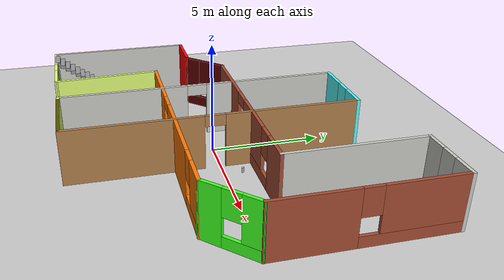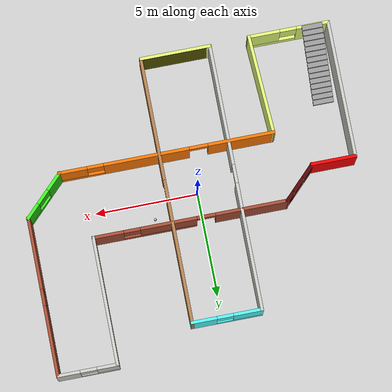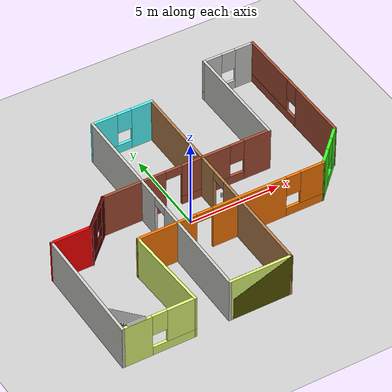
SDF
<sdf version="1.6">
 <world name="default">
  <light name="sun" type="directional">
   <pose>0 0 10 0 -0 0</pose>
   <diffuse>0.8 0.8 0.8 1</diffuse>
   <specular>0.2 0.2 0.2 1</specular>
   <attenuation>
    <range>1000</range>
    <constant>0.9</constant>
    <linear>0.01</linear>
    <quadratic>0.001</quadratic>
   </attenuation>
   <direction>-0.5 0.1 -0.9</direction>
  </light>
  <model name="ground_plane">
   <static>1</static>
   <link name="link">
    <collision name="collision">
     <geometry><plane><normal>0 0 1</normal><size>100 100</size></plane></geometry>
     <surface><friction><ode><mu>100</mu><mu2>50</mu2></ode></friction></surface>
    </collision>
    <visual name="visual">
     <cast_shadows>0</cast_shadows>
     <geometry><plane><normal>0 0 1</normal><size>100 100</size></plane></geometry>
     <material>
      <script><uri>file://media/materials/scripts/gazebo.material</uri><name>Gazebo/Grey</name></script>
     </material>
    </visual>
   </link>
  </model>
  <gravity>0 0 -9.8</gravity>
  <magnetic_field>6e-06 2.3e-05 -4.2e-05</magnetic_field>
  <atmosphere type="adiabatic"/>
  <physics name="default_physics" default="0" type="ode">
   <max_step_size>0.001</max_step_size>
   <real_time_factor>1</real_time_factor>
   <real_time_update_rate>1000</real_time_update_rate>
  </physics>
  <scene><ambient>0.4 0.4 0.4 1</ambient><background>0.7 0.7 0.7 1</background><shadows>1</shadows></scene>
  <spherical_coordinates>
   <surface_model>EARTH_WGS84</surface_model>
   <latitude_deg>0</latitude_deg>
   <longitude_deg>0</longitude_deg>
   <elevation>0</elevation>
   <heading_deg>0</heading_deg>
  </spherical_coordinates>
  <model name="swastika">
   <pose>0.275057 0.413118 0 0 -0 0</pose>
   <link name="Stairs_0">
    <visual name="Stairs_0_Visual_0">
     <pose>-7.12565 -3.74754 0.083333 0 -0 0</pose>
     <geometry><box><size>1 0.233333 0.166667</size></box></geometry>
     <material>
      <script><uri>file://media/materials/scripts/gazebo.material</uri><name>Gazebo/Grey</name></script>
      <ambient>1 1 1 1</ambient>
     </material>
     <meta><layer>0</layer></meta>
    </visual>
    <collision name="Stairs_0_Collision_0">
     <geometry><box><size>1 0.233333 0.166667</size></box></geometry>
     <pose>-7.12565 -3.74754 0.083333 0 -0 0</pose>
    </collision>
    <visual name="Stairs_0_Visual_1">
     <pose>-7.12565 -3.98088 0.25 0 -0 0</pose>
     <geometry><box><size>1 0.233333 0.166667</size></box></geometry>
     <material>
      <script><uri>file://media/materials/scripts/gazebo.material</uri><name>Gazebo/Grey</name></script>
      <ambient>1 1 1 1</ambient>
     </material>
     <meta><layer>0</layer></meta>
    </visual>
    <collision name="Stairs_0_Collision_1">
     <geometry><box><size>1 0.233333 0.166667</size></box></geometry>
     <pose>-7.12565 -3.98088 0.25 0 -0 0</pose>
    </collision>
    <visual name="Stairs_0_Visual_2">
     <pose>-7.12565 -4.21421 0.416667 0 -0 0</pose>
     <geometry><box><size>1 0.233333 0.166667</size></box></geometry>
     <material>
      <script><uri>file://media/materials/scripts/gazebo.material</uri><name>Gazebo/Grey</name></script>
      <ambient>1 1 1 1</ambient>
     </material>
     <meta><layer>0</layer></meta>
    </visual>
    <collision name="Stairs_0_Collision_2">
     <geometry><box><size>1 0.233333 0.166667</size></box></geometry>
     <pose>-7.12565 -4.21421 0.416667 0 -0 0</pose>
    </collision>
    <visual name="Stairs_0_Visual_3">
     <pose>-7.12565 -4.44754 0.583333 0 -0 0</pose>
     <geometry><box><size>1 0.233333 0.166667</size></box></geometry>
     <material>
      <script><uri>file://media/materials/scripts/gazebo.material</uri><name>Gazebo/Grey</name></script>
      <ambient>1 1 1 1</ambient>
     </material>
     <meta><layer>0</layer></meta>
    </visual>
    <collision name="Stairs_0_Collision_3">
     <geometry><box><size>1 0.233333 0.166667</size></box></geometry>
     <pose>-7.12565 -4.44754 0.583333 0 -0 0</pose>
    </collision>
    <visual name="Stairs_0_Visual_4">
     <pose>-7.12565 -4.68088 0.75 0 -0 0</pose>
     <geometry><box><size>1 0.233333 0.166667</size></box></geometry>
     <material>
      <script><uri>file://media/materials/scripts/gazebo.material</uri><name>Gazebo/Grey</name></script>
      <ambient>1 1 1 1</ambient>
     </material>
     <meta><layer>0</layer></meta>
    </visual>
    <collision name="Stairs_0_Collision_4">
     <geometry><box><size>1 0.233333 0.166667</size></box></geometry>
     <pose>-7.12565 -4.68088 0.75 0 -0 0</pose>
    </collision>
    <visual name="Stairs_0_Visual_5">
     <pose>-7.12565 -4.91421 0.916667 0 -0 0</pose>
     <geometry><box><size>1 0.233333 0.166667</size></box></geometry>
     <material>
      <script><uri>file://media/materials/scripts/gazebo.material</uri><name>Gazebo/Grey</name></script>
      <ambient>1 1 1 1</ambient>
     </material>
     <meta><layer>0</layer></meta>
    </visual>
    <collision name="Stairs_0_Collision_5">
     <geometry><box><size>1 0.233333 0.166667</size></box></geometry>
     <pose>-7.12565 -4.91421 0.916667 0 -0 0</pose>
    </collision>
    <visual name="Stairs_0_Visual_6">
     <pose>-7.12565 -5.14754 1.08333 0 -0 0</pose>
     <geometry><box><size>1 0.233333 0.166667</size></box></geometry>
     <material>
      <script><uri>file://media/materials/scripts/gazebo.material</uri><name>Gazebo/Grey</name></script>
      <ambient>1 1 1 1</ambient>
     </material>
     <meta><layer>0</layer></meta>
    </visual>
    <collision name="Stairs_0_Collision_6">
     <geometry><box><size>1 0.233333 0.166667</size></box></geometry>
     <pose>-7.12565 -5.14754 1.08333 0 -0 0</pose>
    </collision>
    <visual name="Stairs_0_Visual_7">
     <pose>-7.12565 -5.38087 1.25 0 -0 0</pose>
     <geometry><box><size>1 0.233333 0.166667</size></box></geometry>
     <material>
      <script><uri>file://media/materials/scripts/gazebo.material</uri><name>Gazebo/Grey</name></script>
      <ambient>1 1 1 1</ambient>
     </material>
     <meta><layer>0</layer></meta>
    </visual>
    <collision name="Stairs_0_Collision_7">
     <geometry><box><size>1 0.233333 0.166667</size></box></geometry>
     <pose>-7.12565 -5.38087 1.25 0 -0 0</pose>
    </collision>
    <visual name="Stairs_0_Visual_8">
     <pose>-7.12565 -5.61421 1.41667 0 -0 0</pose>
     <geometry><box><size>1 0.233333 0.166667</size></box></geometry>
     <material>
      <script><uri>file://media/materials/scripts/gazebo.material</uri><name>Gazebo/Grey</name></script>
      <ambient>1 1 1 1</ambient>
     </material>
     <meta><layer>0</layer></meta>
    </visual>
    <collision name="Stairs_0_Collision_8">
     <geometry><box><size>1 0.233333 0.166667</size></box></geometry>
     <pose>-7.12565 -5.61421 1.41667 0 -0 0</pose>
    </collision>
    <visual name="Stairs_0_Visual_9">
     <pose>-7.12565 -5.84754 1.58333 0 -0 0</pose>
     <geometry><box><size>1 0.233333 0.166667</size></box></geometry>
     <material>
      <script><uri>file://media/materials/scripts/gazebo.material</uri><name>Gazebo/Grey</name></script>
      <ambient>1 1 1 1</ambient>
     </material>
     <meta><layer>0</layer></meta>
    </visual>
    <collision name="Stairs_0_Collision_9">
     <geometry><box><size>1 0.233333 0.166667</size></box></geometry>
     <pose>-7.12565 -5.84754 1.58333 0 -0 0</pose>
    </collision>
    <visual name="Stairs_0_Visual_10">
     <pose>-7.12565 -6.08087 1.75 0 -0 0</pose>
     <geometry><box><size>1 0.233333 0.166667</size></box></geometry>
     <material>
      <script><uri>file://media/materials/scripts/gazebo.material</uri><name>Gazebo/Grey</name></script>
      <ambient>1 1 1 1</ambient>
     </material>
     <meta><layer>0</layer></meta>
    </visual>
    <collision name="Stairs_0_Collision_10">
     <geometry><box><size>1 0.233333 0.166667</size></box></geometry>
     <pose>-7.12565 -6.08087 1.75 0 -0 0</pose>
    </collision>
    <visual name="Stairs_0_Visual_11">
     <pose>-7.12565 -6.31421 1.91667 0 -0 0</pose>
     <geometry><box><size>1 0.233333 0.166667</size></box></geometry>
     <material>
      <script><uri>file://media/materials/scripts/gazebo.material</uri><name>Gazebo/Grey</name></script>
      <ambient>1 1 1 1</ambient>
     </material>
     <meta><layer>0</layer></meta>
    </visual>
    <collision name="Stairs_0_Collision_11">
     <geometry><box><size>1 0.233333 0.166667</size></box></geometry>
     <pose>-7.12565 -6.31421 1.91667 0 -0 0</pose>
    </collision>
    <visual name="Stairs_0_Visual_12">
     <pose>-7.12565 -6.54754 2.08333 0 -0 0</pose>
     <geometry><box><size>1 0.233333 0.166667</size></box></geometry>
     <material>
      <script><uri>file://media/materials/scripts/gazebo.material</uri><name>Gazebo/Grey</name></script>
      <ambient>1 1 1 1</ambient>
     </material>
     <meta><layer>0</layer></meta>
    </visual>
    <collision name="Stairs_0_Collision_12">
     <geometry><box><size>1 0.233333 0.166667</size></box></geometry>
     <pose>-7.12565 -6.54754 2.08333 0 -0 0</pose>
    </collision>
    <visual name="Stairs_0_Visual_13">
     <pose>-7.12565 -6.78087 2.25 0 -0 0</pose>
     <geometry><box><size>1 0.233333 0.166667</size></box></geometry>
     <material>
      <script><uri>file://media/materials/scripts/gazebo.material</uri><name>Gazebo/Grey</name></script>
      <ambient>1 1 1 1</ambient>
     </material>
     <meta><layer>0</layer></meta>
    </visual>
    <collision name="Stairs_0_Collision_13">
     <geometry><box><size>1 0.233333 0.166667</size></box></geometry>
     <pose>-7.12565 -6.78087 2.25 0 -0 0</pose>
    </collision>
    <visual name="Stairs_0_Visual_14">
     <pose>-7.12565 -7.01421 2.41667 0 -0 0</pose>
     <geometry><box><size>1 0.233333 0.166667</size></box></geometry>
     <material>
      <script><uri>file://media/materials/scripts/gazebo.material</uri><name>Gazebo/Grey</name></script>
      <ambient>1 1 1 1</ambient>
     </material>
     <meta><layer>0</layer></meta>
    </visual>
    <collision name="Stairs_0_Collision_14">
     <geometry><box><size>1 0.233333 0.166667</size></box></geometry>
     <pose>-7.12565 -7.01421 2.41667 0 -0 0</pose>
    </collision>
   </link>
   <link name="Wall_0">
    <pose>0.863451 -2.34407 0 0 -0 0</pose>
    <visual name="Wall_0_Visual_0">
     <pose>-3.6251 0 1.25 0 -0 0</pose>
     <geometry><box><size>3.2498 0.15 2.5</size></box></geometry>
     <material>
      <script><uri>file://media/materials/scripts/gazebo.material</uri><name>Gazebo/Grey</name></script>
      <ambient>0.996078 0.47451 0.0196078 1</ambient>
     </material>
     <meta><layer>0</layer></meta>
    </visual>
    <collision name="Wall_0_Collision_0">
     <geometry><box><size>3.2498 0.15 2.5</size></box></geometry>
     <pose>-3.6251 0 1.25 0 -0 0</pose>
    </collision>
    <visual name="Wall_0_Visual_1">
     <pose>0.9729 0 1.25 0 -0 0</pose>
     <geometry><box><size>4.14619 0.15 2.5</size></box></geometry>
     <material>
      <script><uri>file://media/materials/scripts/gazebo.material</uri><name>Gazebo/Grey</name></script>
      <ambient>0.996078 0.47451 0.0196078 1</ambient>
     </material>
     <meta><layer>0</layer></meta>
    </visual>
    <collision name="Wall_0_Collision_1">
     <geometry><box><size>4.14619 0.15 2.5</size></box></geometry>
     <pose>0.9729 0 1.25 0 -0 0</pose>
    </collision>
    <visual name="Wall_0_Visual_2">
     <pose>4.148 0 0.25 0 -0 0</pose>
     <geometry><box><size>2.204 0.15 0.5</size></box></geometry>
     <material>
      <script><uri>file://media/materials/scripts/gazebo.material</uri><name>Gazebo/Grey</name></script>
      <ambient>0.996078 0.47451 0.0196078 1</ambient>
     </material>
     <meta><layer>0</layer></meta>
    </visual>
    <collision name="Wall_0_Collision_2">
     <geometry><box><size>2.204 0.15 0.5</size></box></geometry>
     <pose>4.148 0 0.25 0 -0 0</pose>
    </collision>
    <visual name="Wall_0_Visual_3">
     <pose>4.548 0 1.5 0 -0 0</pose>
     <geometry><box><size>1.404 0.15 2</size></box></geometry>
     <material>
      <script><uri>file://media/materials/scripts/gazebo.material</uri><name>Gazebo/Grey</name></script>
      <ambient>0.996078 0.47451 0.0196078 1</ambient>
     </material>
     <meta><layer>0</layer></meta>
    </visual>
    <collision name="Wall_0_Collision_3">
     <geometry><box><size>1.404 0.15 2</size></box></geometry>
     <pose>4.548 0 1.5 0 -0 0</pose>
    </collision>
    <visual name="Wall_0_Visual_4">
     <pose>3.446 0 1.9 0 -0 0</pose>
     <geometry><box><size>0.8 0.15 1.2</size></box></geometry>
     <material>
      <script><uri>file://media/materials/scripts/gazebo.material</uri><name>Gazebo/Grey</name></script>
      <ambient>0.996078 0.47451 0.0196078 1</ambient>
     </material>
     <meta><layer>0</layer></meta>
    </visual>
    <collision name="Wall_0_Collision_4">
     <geometry><box><size>0.8 0.15 1.2</size></box></geometry>
     <pose>3.446 0 1.9 0 -0 0</pose>
    </collision>
    <visual name="Wall_0_Visual_5">
     <pose>-1.5502 0 2.25 0 -0 0</pose>
     <geometry><box><size>0.9 0.15 0.5</size></box></geometry>
     <material>
      <script><uri>file://media/materials/scripts/gazebo.material</uri><name>Gazebo/Grey</name></script>
      <ambient>0.996078 0.47451 0.0196078 1</ambient>
     </material>
     <meta><layer>0</layer></meta>
    </visual>
    <collision name="Wall_0_Collision_5">
     <geometry><box><size>0.9 0.15 0.5</size></box></geometry>
     <pose>-1.5502 0 2.25 0 -0 0</pose>
    </collision>
   </link>
   <link name="Wall_1">
    <pose>6.95769 -1.42483 0 0 -0 0.785398</pose>
    <visual name="Wall_1_Visual_0">
     <pose>-0.850399 0 1.25 0 -0 0</pose>
     <geometry><box><size>1.0492 0.15 2.5</size></box></geometry>
     <material>
      <script><uri>file://media/materials/scripts/gazebo.material</uri><name>Gazebo/Grey</name></script>
      <ambient>0.243137 1 0.129412 1</ambient>
     </material>
     <meta><layer>0</layer></meta>
    </visual>
    <collision name="Wall_1_Collision_0">
     <geometry><box><size>1.0492 0.15 2.5</size></box></geometry>
     <pose>-0.850399 0 1.25 0 -0 0</pose>
    </collision>
    <visual name="Wall_1_Visual_1">
     <pose>0.524601 0 0.25 0 -0 0</pose>
     <geometry><box><size>1.7008 0.15 0.5</size></box></geometry>
     <material>
      <script><uri>file://media/materials/scripts/gazebo.material</uri><name>Gazebo/Grey</name></script>
      <ambient>0.243137 1 0.129412 1</ambient>
     </material>
     <meta><layer>0</layer></meta>
    </visual>
    <collision name="Wall_1_Collision_1">
     <geometry><box><size>1.7008 0.15 0.5</size></box></geometry>
     <pose>0.524601 0 0.25 0 -0 0</pose>
    </collision>
    <visual name="Wall_1_Visual_2">
     <pose>0.924601 0 1.5 0 -0 0</pose>
     <geometry><box><size>0.900797 0.15 2</size></box></geometry>
     <material>
      <script><uri>file://media/materials/scripts/gazebo.material</uri><name>Gazebo/Grey</name></script>
      <ambient>0.243137 1 0.129412 1</ambient>
     </material>
     <meta><layer>0</layer></meta>
    </visual>
    <collision name="Wall_1_Collision_2">
     <geometry><box><size>0.900797 0.15 2</size></box></geometry>
     <pose>0.924601 0 1.5 0 -0 0</pose>
    </collision>
    <visual name="Wall_1_Visual_3">
     <pose>0.074203 0 1.9 0 -0 0</pose>
     <geometry><box><size>0.8 0.15 1.2</size></box></geometry>
     <material>
      <script><uri>file://media/materials/scripts/gazebo.material</uri><name>Gazebo/Grey</name></script>
      <ambient>0.243137 1 0.129412 1</ambient>
     </material>
     <meta><layer>0</layer></meta>
    </visual>
    <collision name="Wall_1_Collision_3">
     <geometry><box><size>0.8 0.15 1.2</size></box></geometry>
     <pose>0.074203 0 1.9 0 -0 0</pose>
    </collision>
   </link>
   <link name="Wall_10">
    <collision name="Wall_10_Collision">
     <geometry><box><size>4.90321 0.15 2.5</size></box></geometry>
     <pose>0 0 1.25 0 -0 0</pose>
    </collision>
    <visual name="Wall_10_Visual">
     <pose>0 0 1.25 0 -0 0</pose>
     <geometry><box><size>4.90321 0.15 2.5</size></box></geometry>
     <material>
      <script><uri>file://media/materials/scripts/gazebo.material</uri><name>Gazebo/Grey</name></script>
      <ambient>0.886275 1 0.470588 1</ambient>
     </material>
     <meta><layer>0</layer></meta>
    </visual>
    <pose>-4.18477 -4.71729 0 0 -0 1.62417</pose>
   </link>
   <link name="Wall_13">
    <collision name="Wall_13_Collision">
     <geometry><box><size>3.25 0.15 2.5</size></box></geometry>
     <pose>0 0 1.25 0 -0 0</pose>
    </collision>
    <visual name="Wall_13_Visual">
     <pose>0 0 1.25 0 -0 0</pose>
     <geometry><box><size>3.25 0.15 2.5</size></box></geometry>
     <material>
      <script><uri>file://media/materials/scripts/gazebo.material</uri><name>Gazebo/Grey</name></script>
      <ambient>0.333333 0.333333 0 1</ambient>
     </material>
     <meta><layer>0</layer></meta>
    </visual>
    <pose>-0.339616 -7.01768 0 0 -0 0</pose>
   </link>
   <link name="Wall_14">
    <pose>1.21038 -0.592682 0 0 -0 1.5708</pose>
    <visual name="Wall_14_Visual_0">
     <pose>-3.4938 0 1.25 0 -0 0</pose>
     <geometry><box><size>6.01239 0.15 2.5</size></box></geometry>
     <material>
      <script><uri>file://media/materials/scripts/gazebo.material</uri><name>Gazebo/Wood</name></script>
      <ambient>0.921569 0.807843 0.615686 1</ambient>
     </material>
     <meta><layer>0</layer></meta>
    </visual>
    <collision name="Wall_14_Collision_0">
     <geometry><box><size>6.01239 0.15 2.5</size></box></geometry>
     <pose>-3.4938 0 1.25 0 -0 0</pose>
    </collision>
    <visual name="Wall_14_Visual_1">
     <pose>3.4562 0 1.25 0 -0 0</pose>
     <geometry><box><size>6.08761 0.15 2.5</size></box></geometry>
     <material>
      <script><uri>file://media/materials/scripts/gazebo.material</uri><name>Gazebo/Wood</name></script>
      <ambient>0.921569 0.807843 0.615686 1</ambient>
     </material>
     <meta><layer>0</layer></meta>
    </visual>
    <collision name="Wall_14_Collision_1">
     <geometry><box><size>6.08761 0.15 2.5</size></box></geometry>
     <pose>3.4562 0 1.25 0 -0 0</pose>
    </collision>
    <visual name="Wall_14_Visual_2">
     <pose>-0.037608 0 2.25 0 -0 0</pose>
     <geometry><box><size>0.9 0.15 0.5</size></box></geometry>
     <material>
      <script><uri>file://media/materials/scripts/gazebo.material</uri><name>Gazebo/Wood</name></script>
      <ambient>0.921569 0.807843 0.615686 1</ambient>
     </material>
     <meta><layer>0</layer></meta>
    </visual>
    <collision name="Wall_14_Collision_2">
     <geometry><box><size>0.9 0.15 0.5</size></box></geometry>
     <pose>-0.037608 0 2.25 0 -0 0</pose>
    </collision>
   </link>
   <link name="Wall_15">
    <pose>-0.464616 5.83232 0 0 -0 3.14159</pose>
    <visual name="Wall_15_Visual_0">
     <pose>-1.11746 0 1.25 0 -0 0</pose>
     <geometry><box><size>1.26507 0.15 2.5</size></box></geometry>
     <material>
      <script><uri>file://media/materials/scripts/gazebo.material</uri><name>Gazebo/Grey</name></script>
      <ambient>0.333333 1 1 1</ambient>
     </material>
     <meta><layer>0</layer></meta>
    </visual>
    <collision name="Wall_15_Collision_0">
     <geometry><box><size>1.26507 0.15 2.5</size></box></geometry>
     <pose>-1.11746 0 1.25 0 -0 0</pose>
    </collision>
    <visual name="Wall_15_Visual_1">
     <pose>0.632535 0 0.25 0 -0 0</pose>
     <geometry><box><size>2.23493 0.15 0.5</size></box></geometry>
     <material>
      <script><uri>file://media/materials/scripts/gazebo.material</uri><name>Gazebo/Grey</name></script>
      <ambient>0.333333 1 1 1</ambient>
     </material>
     <meta><layer>0</layer></meta>
    </visual>
    <collision name="Wall_15_Collision_1">
     <geometry><box><size>2.23493 0.15 0.5</size></box></geometry>
     <pose>0.632535 0 0.25 0 -0 0</pose>
    </collision>
    <visual name="Wall_15_Visual_2">
     <pose>1.03253 0 1.5 0 -0 0</pose>
     <geometry><box><size>1.43493 0.15 2</size></box></geometry>
     <material>
      <script><uri>file://media/materials/scripts/gazebo.material</uri><name>Gazebo/Grey</name></script>
      <ambient>0.333333 1 1 1</ambient>
     </material>
     <meta><layer>0</layer></meta>
    </visual>
    <collision name="Wall_15_Collision_2">
     <geometry><box><size>1.43493 0.15 2</size></box></geometry>
     <pose>1.03253 0 1.5 0 -0 0</pose>
    </collision>
    <visual name="Wall_15_Visual_3">
     <pose>-0.08493 0 1.9 0 -0 0</pose>
     <geometry><box><size>0.8 0.15 1.2</size></box></geometry>
     <material>
      <script><uri>file://media/materials/scripts/gazebo.material</uri><name>Gazebo/Grey</name></script>
      <ambient>0.333333 1 1 1</ambient>
     </material>
     <meta><layer>0</layer></meta>
    </visual>
    <collision name="Wall_15_Collision_3">
     <geometry><box><size>0.8 0.15 1.2</size></box></geometry>
     <pose>-0.08493 0 1.9 0 -0 0</pose>
    </collision>
   </link>
   <link name="Wall_16">
    <pose>-2.13962 -0.592682 0 0 0 -1.5708</pose>
    <visual name="Wall_16_Visual_0">
     <pose>-3.40297 0 1.25 0 -0 0</pose>
     <geometry><box><size>6.19407 0.15 2.5</size></box></geometry>
     <material>
      <script><uri>file://media/materials/scripts/gazebo.material</uri><name>Gazebo/CeilingTiled</name></script>
      <ambient>0.435294 0.796078 0.67451 1</ambient>
     </material>
     <meta><layer>0</layer></meta>
    </visual>
    <collision name="Wall_16_Collision_0">
     <geometry><box><size>6.19407 0.15 2.5</size></box></geometry>
     <pose>-3.40297 0 1.25 0 -0 0</pose>
    </collision>
    <visual name="Wall_16_Visual_1">
     <pose>3.54704 0 1.25 0 -0 0</pose>
     <geometry><box><size>5.90593 0.15 2.5</size></box></geometry>
     <material>
      <script><uri>file://media/materials/scripts/gazebo.material</uri><name>Gazebo/CeilingTiled</name></script>
      <ambient>0.435294 0.796078 0.67451 1</ambient>
     </material>
     <meta><layer>0</layer></meta>
    </visual>
    <collision name="Wall_16_Collision_1">
     <geometry><box><size>5.90593 0.15 2.5</size></box></geometry>
     <pose>3.54704 0 1.25 0 -0 0</pose>
    </collision>
    <visual name="Wall_16_Visual_2">
     <pose>0.144069 0 2.25 0 -0 0</pose>
     <geometry><box><size>0.9 0.15 0.5</size></box></geometry>
     <material>
      <script><uri>file://media/materials/scripts/gazebo.material</uri><name>Gazebo/CeilingTiled</name></script>
      <ambient>0.435294 0.796078 0.67451 1</ambient>
     </material>
     <meta><layer>0</layer></meta>
    </visual>
    <collision name="Wall_16_Collision_2">
     <geometry><box><size>0.9 0.15 0.5</size></box></geometry>
     <pose>0.144069 0 2.25 0 -0 0</pose>
    </collision>
   </link>
   <link name="Wall_17">
    <collision name="Wall_17_Collision">
     <geometry><box><size>3.5 0.15 2.5</size></box></geometry>
     <pose>0 0 1.25 0 -0 0</pose>
    </collision>
    <visual name="Wall_17_Visual">
     <pose>0 0 1.25 0 -0 0</pose>
     <geometry><box><size>3.5 0.15 2.5</size></box></geometry>
     <material>
      <script><uri>file://media/materials/scripts/gazebo.material</uri><name>Gazebo/Grey</name></script>
      <ambient>0.886275 1 0.470588 1</ambient>
     </material>
     <meta><layer>0</layer></meta>
    </visual>
    <pose>-0.464616 -7.01768 0 0 -0 0</pose>
   </link>
   <link name="Wall_2">
    <pose>7.87693 3.29441 0 0 -0 1.5708</pose>
    <visual name="Wall_2_Visual_0">
     <pose>-2.12516 0 1.25 0 -0 0</pose>
     <geometry><box><size>3.49969 0.15 2.5</size></box></geometry>
     <material>
      <script><uri>file://media/materials/scripts/gazebo.material</uri><name>Gazebo/Bricks</name></script>
      <ambient>1 0.219608 0.219608 1</ambient>
     </material>
     <meta><layer>0</layer></meta>
    </visual>
    <collision name="Wall_2_Collision_0">
     <geometry><box><size>3.49969 0.15 2.5</size></box></geometry>
     <pose>-2.12516 0 1.25 0 -0 0</pose>
    </collision>
    <visual name="Wall_2_Visual_1">
     <pose>1.74984 0 0.25 0 -0 0</pose>
     <geometry><box><size>4.25031 0.15 0.5</size></box></geometry>
     <material>
      <script><uri>file://media/materials/scripts/gazebo.material</uri><name>Gazebo/Bricks</name></script>
      <ambient>1 0.219608 0.219608 1</ambient>
     </material>
     <meta><layer>0</layer></meta>
    </visual>
    <collision name="Wall_2_Collision_1">
     <geometry><box><size>4.25031 0.15 0.5</size></box></geometry>
     <pose>1.74984 0 0.25 0 -0 0</pose>
    </collision>
    <visual name="Wall_2_Visual_2">
     <pose>2.14984 0 1.5 0 -0 0</pose>
     <geometry><box><size>3.45031 0.15 2</size></box></geometry>
     <material>
      <script><uri>file://media/materials/scripts/gazebo.material</uri><name>Gazebo/Bricks</name></script>
      <ambient>1 0.219608 0.219608 1</ambient>
     </material>
     <meta><layer>0</layer></meta>
    </visual>
    <collision name="Wall_2_Collision_2">
     <geometry><box><size>3.45031 0.15 2</size></box></geometry>
     <pose>2.14984 0 1.5 0 -0 0</pose>
    </collision>
    <visual name="Wall_2_Visual_3">
     <pose>0.024689 0 1.9 0 -0 0</pose>
     <geometry><box><size>0.8 0.15 1.2</size></box></geometry>
     <material>
      <script><uri>file://media/materials/scripts/gazebo.material</uri><name>Gazebo/Bricks</name></script>
      <ambient>1 0.219608 0.219608 1</ambient>
     </material>
     <meta><layer>0</layer></meta>
    </visual>
    <collision name="Wall_2_Collision_3">
     <geometry><box><size>0.8 0.15 1.2</size></box></geometry>
     <pose>0.024689 0 1.9 0 -0 0</pose>
    </collision>
   </link>
   <link name="Wall_3">
    <pose>6.45193 7.09441 0 0 -0 3.14159</pose>
    <visual name="Wall_3_Visual_0">
     <pose>-0.930438 0 1.25 0 -0 0</pose>
     <geometry><box><size>1.13912 0.15 2.5</size></box></geometry>
     <material>
      <script><uri>file://media/materials/scripts/gazebo.material</uri><name>Gazebo/CeilingTiled</name></script>
      <ambient>0.886275 1 0.470588 1</ambient>
     </material>
     <meta><layer>0</layer></meta>
    </visual>
    <collision name="Wall_3_Collision_0">
     <geometry><box><size>1.13912 0.15 2.5</size></box></geometry>
     <pose>-0.930438 0 1.25 0 -0 0</pose>
    </collision>
    <visual name="Wall_3_Visual_1">
     <pose>0.569562 0 0.25 0 -0 0</pose>
     <geometry><box><size>1.86088 0.15 0.5</size></box></geometry>
     <material>
      <script><uri>file://media/materials/scripts/gazebo.material</uri><name>Gazebo/CeilingTiled</name></script>
      <ambient>0.886275 1 0.470588 1</ambient>
     </material>
     <meta><layer>0</layer></meta>
    </visual>
    <collision name="Wall_3_Collision_1">
     <geometry><box><size>1.86088 0.15 0.5</size></box></geometry>
     <pose>0.569562 0 0.25 0 -0 0</pose>
    </collision>
    <visual name="Wall_3_Visual_2">
     <pose>0.969562 0 1.5 0 -0 0</pose>
     <geometry><box><size>1.06088 0.15 2</size></box></geometry>
     <material>
      <script><uri>file://media/materials/scripts/gazebo.material</uri><name>Gazebo/CeilingTiled</name></script>
      <ambient>0.886275 1 0.470588 1</ambient>
     </material>
     <meta><layer>0</layer></meta>
    </visual>
    <collision name="Wall_3_Collision_2">
     <geometry><box><size>1.06088 0.15 2</size></box></geometry>
     <pose>0.969562 0 1.5 0 -0 0</pose>
    </collision>
    <visual name="Wall_3_Visual_3">
     <pose>0.039124 0 1.9 0 -0 0</pose>
     <geometry><box><size>0.8 0.15 1.2</size></box></geometry>
     <material>
      <script><uri>file://media/materials/scripts/gazebo.material</uri><name>Gazebo/CeilingTiled</name></script>
      <ambient>0.886275 1 0.470588 1</ambient>
     </material>
     <meta><layer>0</layer></meta>
    </visual>
    <collision name="Wall_3_Collision_3">
     <geometry><box><size>0.8 0.15 1.2</size></box></geometry>
     <pose>0.039124 0 1.9 0 -0 0</pose>
    </collision>
   </link>
   <link name="Wall_4">
    <collision name="Wall_4_Collision">
     <geometry><box><size>6.25 0.15 2.5</size></box></geometry>
     <pose>0 0 1.25 0 -0 0</pose>
    </collision>
    <visual name="Wall_4_Visual">
     <pose>0 0 1.25 0 -0 0</pose>
     <geometry><box><size>6.25 0.15 2.5</size></box></geometry>
     <material>
      <script><uri>file://media/materials/scripts/gazebo.material</uri><name>Gazebo/CeilingTiled</name></script>
      <ambient>0.243137 1 0.129412 1</ambient>
     </material>
     <meta><layer>0</layer></meta>
    </visual>
    <pose>5.02693 4.04441 0 0 0 -1.5708</pose>
   </link>
   <link name="Wall_5">
    <pose>0.351929 0.994408 0 0 -0 3.14159</pose>
    <visual name="Wall_5_Visual_0">
     <pose>-3.98504 0 1.25 0 -0 0</pose>
     <geometry><box><size>1.52992 0.15 2.5</size></box></geometry>
     <material>
      <script><uri>file://media/materials/scripts/gazebo.material</uri><name>Gazebo/Bricks</name></script>
      <ambient>1 0.219608 0.219608 1</ambient>
     </material>
     <meta><layer>0</layer></meta>
    </visual>
    <collision name="Wall_5_Collision_0">
     <geometry><box><size>1.52992 0.15 2.5</size></box></geometry>
     <pose>-3.98504 0 1.25 0 -0 0</pose>
    </collision>
    <visual name="Wall_5_Visual_1">
     <pose>2.98146 0 1.25 0 -0 0</pose>
     <geometry><box><size>3.53707 0.15 2.5</size></box></geometry>
     <material>
      <script><uri>file://media/materials/scripts/gazebo.material</uri><name>Gazebo/Bricks</name></script>
      <ambient>1 0.219608 0.219608 1</ambient>
     </material>
     <meta><layer>0</layer></meta>
    </visual>
    <collision name="Wall_5_Collision_1">
     <geometry><box><size>3.53707 0.15 2.5</size></box></geometry>
     <pose>2.98146 0 1.25 0 -0 0</pose>
    </collision>
    <visual name="Wall_5_Visual_2">
     <pose>-1.45358 0 0.25 0 -0 0</pose>
     <geometry><box><size>3.53301 0.15 0.5</size></box></geometry>
     <material>
      <script><uri>file://media/materials/scripts/gazebo.material</uri><name>Gazebo/Bricks</name></script>
      <ambient>1 0.219608 0.219608 1</ambient>
     </material>
     <meta><layer>0</layer></meta>
    </visual>
    <collision name="Wall_5_Collision_2">
     <geometry><box><size>3.53301 0.15 0.5</size></box></geometry>
     <pose>-1.45358 0 0.25 0 -0 0</pose>
    </collision>
    <visual name="Wall_5_Visual_3">
     <pose>-1.05358 0 1.5 0 -0 0</pose>
     <geometry><box><size>2.73301 0.15 2</size></box></geometry>
     <material>
      <script><uri>file://media/materials/scripts/gazebo.material</uri><name>Gazebo/Bricks</name></script>
      <ambient>1 0.219608 0.219608 1</ambient>
     </material>
     <meta><layer>0</layer></meta>
    </visual>
    <collision name="Wall_5_Collision_3">
     <geometry><box><size>2.73301 0.15 2</size></box></geometry>
     <pose>-1.05358 0 1.5 0 -0 0</pose>
    </collision>
    <visual name="Wall_5_Visual_4">
     <pose>-2.82008 0 1.9 0 -0 0</pose>
     <geometry><box><size>0.8 0.15 1.2</size></box></geometry>
     <material>
      <script><uri>file://media/materials/scripts/gazebo.material</uri><name>Gazebo/Bricks</name></script>
      <ambient>1 0.219608 0.219608 1</ambient>
     </material>
     <meta><layer>0</layer></meta>
    </visual>
    <collision name="Wall_5_Collision_4">
     <geometry><box><size>0.8 0.15 1.2</size></box></geometry>
     <pose>-2.82008 0 1.9 0 -0 0</pose>
    </collision>
    <visual name="Wall_5_Visual_5">
     <pose>0.762928 0 2.25 0 -0 0</pose>
     <geometry><box><size>0.9 0.15 0.5</size></box></geometry>
     <material>
      <script><uri>file://media/materials/scripts/gazebo.material</uri><name>Gazebo/Bricks</name></script>
      <ambient>1 0.219608 0.219608 1</ambient>
     </material>
     <meta><layer>0</layer></meta>
    </visual>
    <collision name="Wall_5_Collision_5">
     <geometry><box><size>0.9 0.15 0.5</size></box></geometry>
     <pose>0.762928 0 2.25 0 -0 0</pose>
    </collision>
   </link>
   <link name="Wall_6">
    <pose>-5.06553 0.251946 0 0 0 -2.35619</pose>
    <visual name="Wall_6_Visual_0">
     <pose>-0.822463 0 1.25 0 -0 0</pose>
     <geometry><box><size>0.605074 0.15 2.5</size></box></geometry>
     <material>
      <script><uri>file://media/materials/scripts/gazebo.material</uri><name>Gazebo/Grey</name></script>
      <ambient>0.333333 0 0 1</ambient>
     </material>
     <meta><layer>0</layer></meta>
    </visual>
    <collision name="Wall_6_Collision_0">
     <geometry><box><size>0.605074 0.15 2.5</size></box></geometry>
     <pose>-0.822463 0 1.25 0 -0 0</pose>
    </collision>
    <visual name="Wall_6_Visual_1">
     <pose>0.302537 0 0.25 0 -0 0</pose>
     <geometry><box><size>1.64493 0.15 0.5</size></box></geometry>
     <material>
      <script><uri>file://media/materials/scripts/gazebo.material</uri><name>Gazebo/Grey</name></script>
      <ambient>0.333333 0 0 1</ambient>
     </material>
     <meta><layer>0</layer></meta>
    </visual>
    <collision name="Wall_6_Collision_1">
     <geometry><box><size>1.64493 0.15 0.5</size></box></geometry>
     <pose>0.302537 0 0.25 0 -0 0</pose>
    </collision>
    <visual name="Wall_6_Visual_2">
     <pose>0.702537 0 1.5 0 -0 0</pose>
     <geometry><box><size>0.844926 0.15 2</size></box></geometry>
     <material>
      <script><uri>file://media/materials/scripts/gazebo.material</uri><name>Gazebo/Grey</name></script>
      <ambient>0.333333 0 0 1</ambient>
     </material>
     <meta><layer>0</layer></meta>
    </visual>
    <collision name="Wall_6_Collision_2">
     <geometry><box><size>0.844926 0.15 2</size></box></geometry>
     <pose>0.702537 0 1.5 0 -0 0</pose>
    </collision>
    <visual name="Wall_6_Visual_3">
     <pose>-0.119926 0 1.9 0 -0 0</pose>
     <geometry><box><size>0.8 0.15 1.2</size></box></geometry>
     <material>
      <script><uri>file://media/materials/scripts/gazebo.material</uri><name>Gazebo/Grey</name></script>
      <ambient>0.333333 0 0 1</ambient>
     </material>
     <meta><layer>0</layer></meta>
    </visual>
    <collision name="Wall_6_Collision_3">
     <geometry><box><size>0.8 0.15 1.2</size></box></geometry>
     <pose>-0.119926 0 1.9 0 -0 0</pose>
    </collision>
   </link>
   <link name="Wall_7">
    <collision name="Wall_7_Collision">
     <geometry><box><size>2.25 0.15 2.5</size></box></geometry>
     <pose>0 0 1.25 0 -0 0</pose>
    </collision>
    <visual name="Wall_7_Visual">
     <pose>0 0 1.25 0 -0 0</pose>
     <geometry><box><size>2.25 0.15 2.5</size></box></geometry>
     <material>
      <script><uri>file://media/materials/scripts/gazebo.material</uri><name>Gazebo/Grey</name></script>
      <ambient>1 0 0 1</ambient>
     </material>
     <meta><layer>0</layer></meta>
    </visual>
    <pose>-6.858 -0.490516 0 0 -0 3.14159</pose>
   </link>
   <link name="Wall_8">
    <collision name="Wall_8_Collision">
     <geometry><box><size>6.75 0.15 2.5</size></box></geometry>
     <pose>0 0 1.25 0 -0 0</pose>
    </collision>
    <visual name="Wall_8_Visual">
     <pose>0 0 1.25 0 -0 0</pose>
     <geometry><box><size>6.75 0.15 2.5</size></box></geometry>
     <material>
      <script><uri>file://media/materials/scripts/gazebo.material</uri><name>Gazebo/CeilingTiled</name></script>
      <ambient>1 0.666667 0 1</ambient>
     </material>
     <meta><layer>0</layer></meta>
    </visual>
    <pose>-7.90799 -3.79052 0 0 0 -1.5708</pose>
   </link>
   <link name="Wall_9">
    <pose>-5.983 -7.09052 0 0 -0 0</pose>
    <visual name="Wall_9_Visual_0">
     <pose>-1.18978 0 1.25 0 -0 0</pose>
     <geometry><box><size>1.62044 0.15 2.5</size></box></geometry>
     <material>
      <script><uri>file://media/materials/scripts/gazebo.material</uri><name>Gazebo/Grey</name></script>
      <ambient>0.886275 1 0.470588 1</ambient>
     </material>
     <meta><layer>0</layer></meta>
    </visual>
    <collision name="Wall_9_Collision_0">
     <geometry><box><size>1.62044 0.15 2.5</size></box></geometry>
     <pose>-1.18978 0 1.25 0 -0 0</pose>
    </collision>
    <visual name="Wall_9_Visual_1">
     <pose>0.81022 0 0.25 0 -0 0</pose>
     <geometry><box><size>2.37956 0.15 0.5</size></box></geometry>
     <material>
      <script><uri>file://media/materials/scripts/gazebo.material</uri><name>Gazebo/Grey</name></script>
      <ambient>0.886275 1 0.470588 1</ambient>
     </material>
     <meta><layer>0</layer></meta>
    </visual>
    <collision name="Wall_9_Collision_1">
     <geometry><box><size>2.37956 0.15 0.5</size></box></geometry>
     <pose>0.81022 0 0.25 0 -0 0</pose>
    </collision>
    <visual name="Wall_9_Visual_2">
     <pose>1.21022 0 1.5 0 -0 0</pose>
     <geometry><box><size>1.57956 0.15 2</size></box></geometry>
     <material>
      <script><uri>file://media/materials/scripts/gazebo.material</uri><name>Gazebo/Grey</name></script>
      <ambient>0.886275 1 0.470588 1</ambient>
     </material>
     <meta><layer>0</layer></meta>
    </visual>
    <collision name="Wall_9_Collision_2">
     <geometry><box><size>1.57956 0.15 2</size></box></geometry>
     <pose>1.21022 0 1.5 0 -0 0</pose>
    </collision>
    <visual name="Wall_9_Visual_3">
     <pose>0.02044 0 1.9 0 -0 0</pose>
     <geometry><box><size>0.8 0.15 1.2</size></box></geometry>
     <material>
      <script><uri>file://media/materials/scripts/gazebo.material</uri><name>Gazebo/Grey</name></script>
      <ambient>0.886275 1 0.470588 1</ambient>
     </material>
     <meta><layer>0</layer></meta>
    </visual>
    <collision name="Wall_9_Collision_3">
     <geometry><box><size>0.8 0.15 1.2</size></box></geometry>
     <pose>0.02044 0 1.9 0 -0 0</pose>
    </collision>
   </link>
   <static>1</static>
  </model>
  <model name="beer">
   <link name="link">
    <pose>0 0 0.115 0 -0 0</pose>
    <inertial>
     <mass>0.39</mass>
     <inertia><ixx>0.00058</ixx><ixy>0</ixy><ixz>0</ixz><iyy>0.00058</iyy><iyz>0</iyz><izz>0.00019</izz></inertia>
    </inertial>
    <collision name="collision">
     <geometry><cylinder><radius>0.055</radius><length>0.23</length></cylinder></geometry>
    </collision>
    <visual name="visual">
     <geometry><cylinder><radius>0.055</radius><length>0.23</length></cylinder></geometry>
     <material>
      <script>
       <uri>model://beer/materials/scripts</uri>
       <uri>model://beer/materials/textures</uri>
       <name>Beer/Diffuse</name>
      </script>
     </material>
    </visual>
   </link>
   <pose>2.23231 0.806689 -2e-06 1e-06 -0 -1e-06</pose>
  </model>
 </world>
</sdf>
